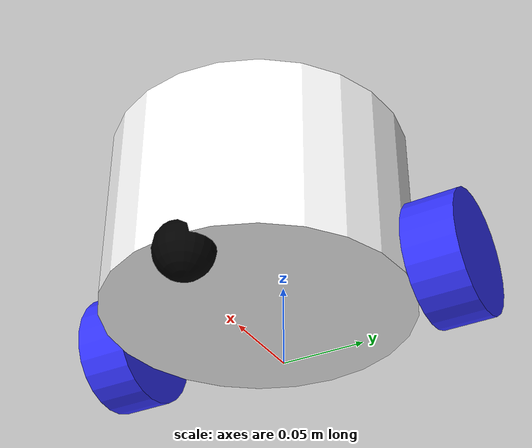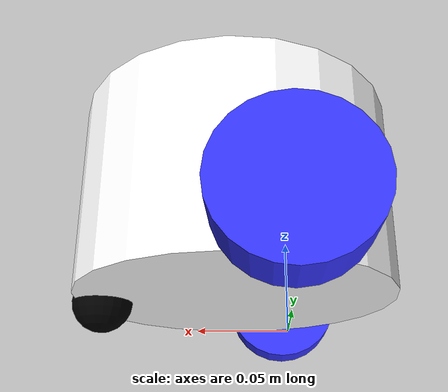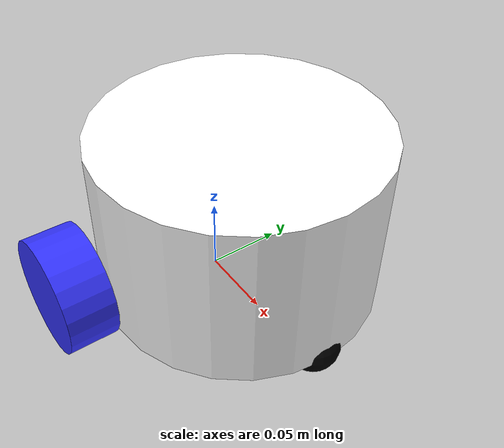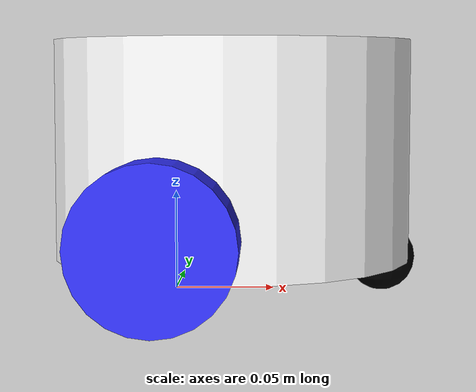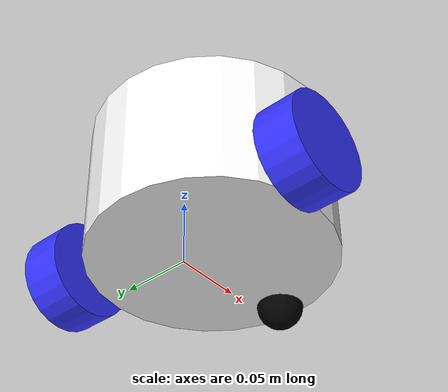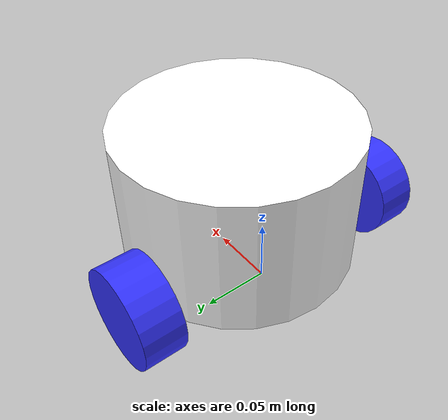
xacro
<?xml version="1.0"?>
<robot xmlns:xacro="http://www.ros.org/wiki/xacro" >

    <material name="white">
        <color rgba="1 1 1 1"/>
    </material>

    <material name="orange">
        <color rgba="1 0.3 0.1 1"/>
    </material>

    <material name="blue">
        <color rgba="0.2 0.2 1 1"/>
    </material>

    <material name="black">
        <color rgba="0 0 0 1"/>
    </material>

    <!-- BASE LINK -->

    <link name="base_link">

    </link>

    <!-- BASE_FOOTPRINT LINK -->

    <joint name="base_footprint_joint" type="fixed">
        <parent link="base_link"/>
        <child link="base_footprint"/>
        <origin xyz="0 0 0" rpy="0 0 0"/>
    </joint>

    <link name="base_footprint">
    </link>

    <!-- CHASSIS LINK -->

    <joint name="chassis_joint" type="fixed">
        <parent link="base_link"/>
        <child link="chassis"/>
        <origin xyz="0.029 0 0.037"/>
    </joint>

    <link name="chassis">
        <visual>
            <origin xyz="0 0 0.035" rpy="0 0 0"/>
            <geometry>
                <cylinder length="0.11" radius="0.09" />
            </geometry>
            <material name="white"/>
        </visual>
        <collision>
            <origin xyz="0 0 0.035" rpy="0 0 0"/>
            <geometry>
                <cylinder length="0.11" radius="0.09" />
            </geometry>
        </collision>
        <xacro:inertial_cylinder mass="1.23" length="0.11" radius="0.09">
            <origin xyz="0 0 0.035" rpy="0 0 0"/>
        </xacro:inertial_cylinder>
    </link>
    <gazebo reference="chassis">
        <material>Gazebo/White</material>
    </gazebo>

    <!-- LEFT WHEEL -->

    <joint name="left_wheel_joint" type="continuous">
        <parent link="base_link"/>
        <child link="left_wheel"/>
        <origin xyz="0 0.09 0.037" rpy="-${pi/2} 0 0"/>
        <axis xyz="0 0 -1"/>
    </joint>

    <link name="left_wheel">
        <visual>
            <origin xyz="0 0 0.0165" rpy="0 0 0"/>
            <geometry>
                <cylinder length="0.031" radius="0.037" />
            </geometry>
            <material name="blue"/>
        </visual>
        <collision>
            <origin xyz="0 0 0.0165" rpy="0 0 0"/>
            <geometry>
                <cylinder length="0.031" radius="0.037" />
            </geometry>
            <material name="blue"/>
        </collision>
        <xacro:inertial_cylinder mass="0.035" length="0.031" radius="0.037">
            <origin xyz="0 0 0.0165" rpy="0 0 0"/>
        </xacro:inertial_cylinder>

    </link>
    <gazebo reference="left_wheel">
        <material>Gazebo/Blue</material>
    </gazebo>

    <!-- RIGHT WHEEL -->

    <joint name="right_wheel_joint" type="continuous">
        <parent link="base_link"/>
        <child link="right_wheel"/>
        <origin xyz="0 -0.09 0.037" rpy="${pi/2} 0 0"/>
        <axis xyz="0 0 -1"/>
    </joint>

    <link name="right_wheel">
        <visual>
            <origin xyz="0 0 0.0165" rpy="0 0 0"/>
            <geometry>
                <cylinder length="0.031" radius="0.037" />
            </geometry>
            <material name="blue"/>
        </visual>
        <collision>
            <origin xyz="0 0 0.0165" rpy="0 0 0"/>
            <geometry>
                <cylinder length="0.031" radius="0.037" />
            </geometry>
            <material name="blue"/>
        </collision>
        <xacro:inertial_cylinder mass="0.035" length="0.031" radius="0.037">
            <origin xyz="0 0 0.0165" rpy="0 0 0"/>
        </xacro:inertial_cylinder>
    </link>
    <gazebo reference="right_wheel">
        <material>Gazebo/Blue</material>
    </gazebo>

    <!-- FRONT CASTER WHEEL -->

    <joint name="front_caster_wheel_joint" type="fixed">
        <parent link="base_link"/>
        <child link="front_caster_wheel"/>
        <origin xyz="0.105 0 0.017" rpy="0 0 0"/>
    </joint>

    <link name="front_caster_wheel">
        <visual>
            <geometry>
                <sphere radius="0.017" />
            </geometry>
            <material name="black"/>
        </visual>
        <collision>
            <geometry>
                <sphere radius="0.017" />
            </geometry>
            <material name="black"/>
        </collision>
        <xacro:inertial_sphere mass="0.042" radius="0.017">
            <origin xyz="0 0 0" rpy="0 0 0"/>
        </xacro:inertial_sphere>
    </link>
    <gazebo reference="front_caster_wheel">
        <material>Gazebo/Black</material>
        <mu1 value="0.003"/>
        <mu2 value="0.003"/>
    </gazebo>

    <!-- BACK CASTER WHEEL -->

</robot>
